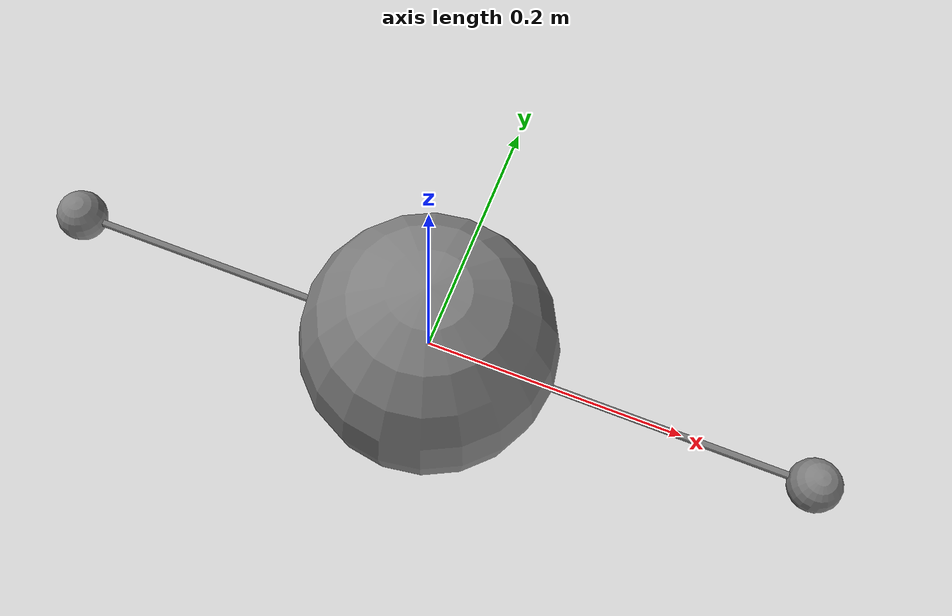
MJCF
<mujoco>
  <worldbody>
    <body name="b1" pos="-0.3 0 0">
      <joint name="j1" type="slide" axis="0 1 0"/>
      <geom type="sphere" size="0.02"/>
      <site name="s1" pos="0 0 0"/>
    </body>
    <body name="wrap_body" pos="0 0 0">
      <geom name="wrap_sphere" type="sphere" size="0.1"/>
    </body>
    <body name="b2" pos="0.3 0 0">
      <joint name="j2" type="slide" axis="0 1 0"/>
      <geom type="sphere" size="0.02"/>
      <site name="s2" pos="0 0 0"/>
    </body>
  </worldbody>
  <tendon>
    <spatial name="t_collinear">
      <site site="s1"/>
      <geom geom="wrap_sphere"/>
      <site site="s2"/>
    </spatial>
  </tendon>
</mujoco>
